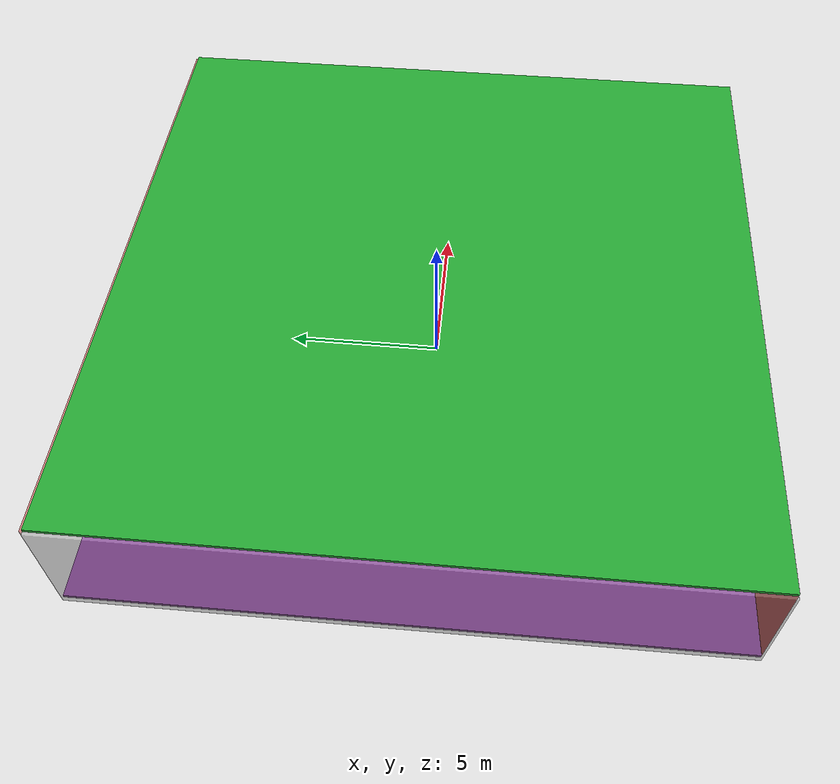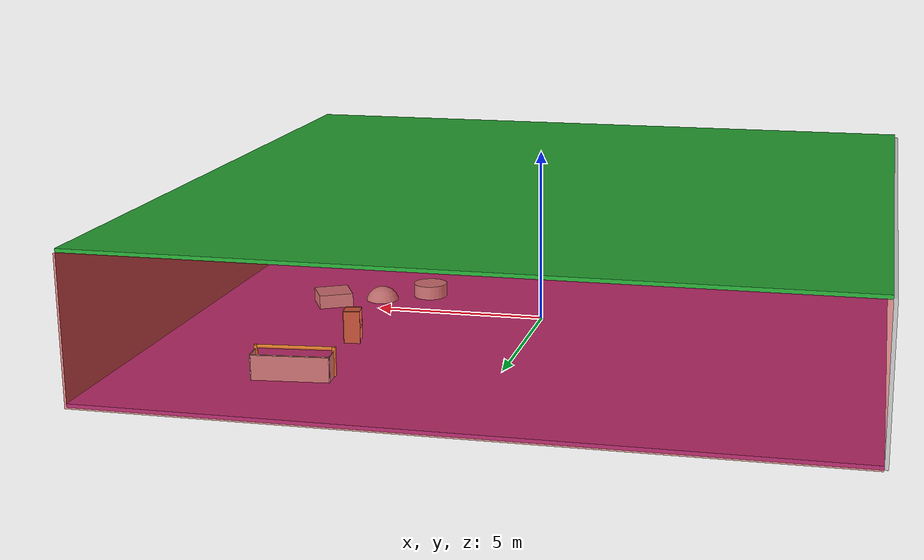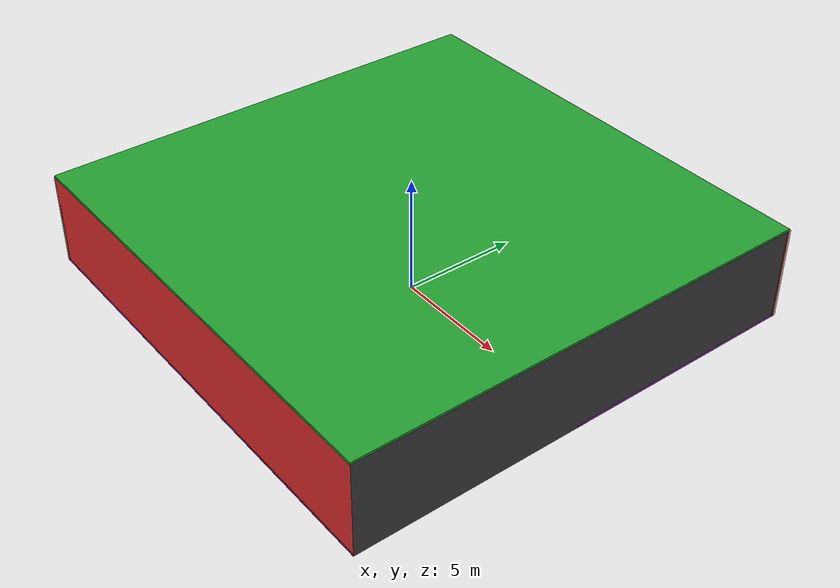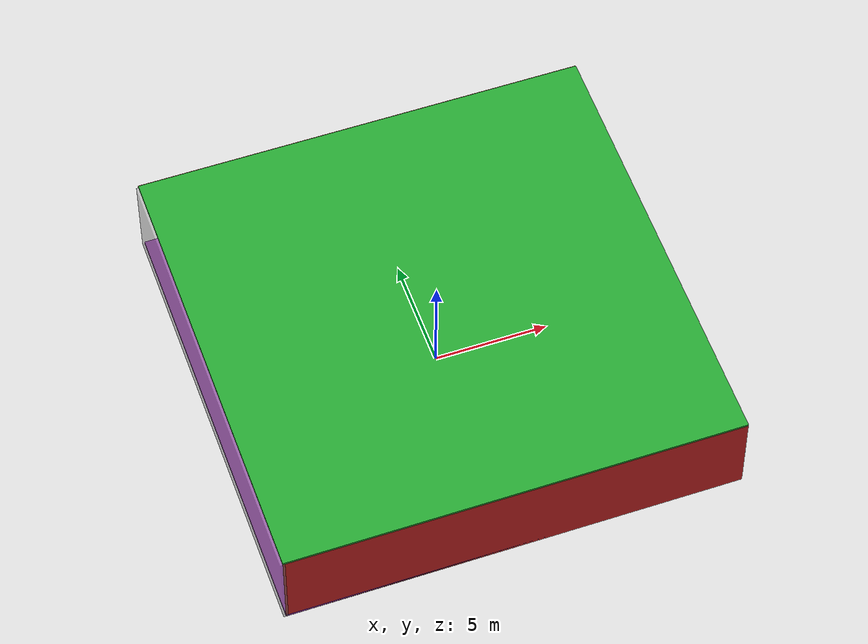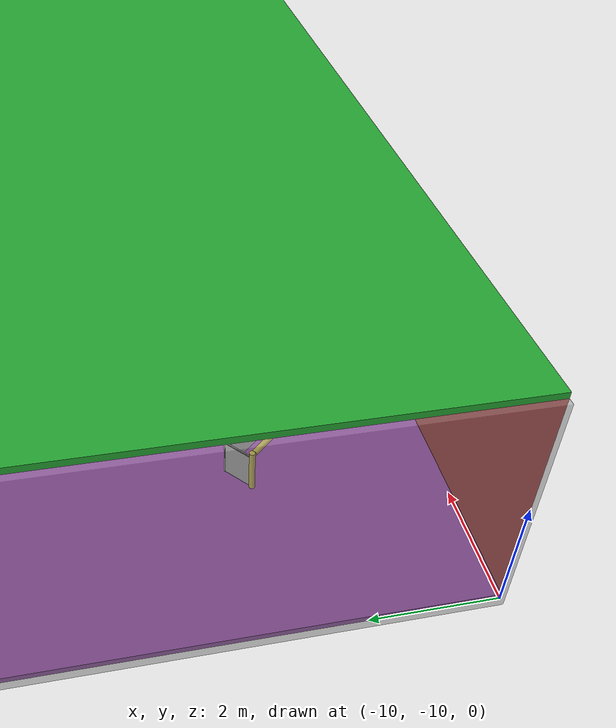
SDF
<sdf version="1.4">
 <world name="default">
  <physics type="ode">
   <max_step_size>0.001</max_step_size>
   <real_time_factor>1</real_time_factor>
   <real_time_update_rate>1000</real_time_update_rate>
   <gravity>0 0 -9.8</gravity>
  </physics>
  <scene><ambient>0.4 0.4 0.4 1</ambient><background>0.7 0.7 0.7 1</background><shadows>1</shadows></scene>
  <model name="Surrounding">
   <static>1</static>
   <link name="Ceiling">
    <collision name="Ceiling_Collision"><geometry><box><size>20 20 0.1</size></box></geometry></collision>
    <visual name="Ceiling_Visual">
     <geometry><box><size>20 20 0.1</size></box></geometry>
     <material>
      <script><uri>file://media/materials/scripts/gazebo.material</uri><name>Gazebo/Green</name></script>
     </material>
    </visual>
    <pose>0 0 4.05 0 0 0</pose>
   </link>
   <link name="Wall_South">
    <collision name="Wall_South_Collision">
     <geometry><box><size>20 0 4</size></box></geometry>
     <pose>0 0 2 0 -0 0</pose>
    </collision>
    <visual name="Wall_South_Visual">
     <pose>0 0 2 0 -0 0</pose>
     <geometry><box><size>20 0 4</size></box></geometry>
     <material>
      <script><uri>file://media/materials/scripts/gazebo.material</uri><name>Gazebo/RedGlow</name></script>
     </material>
    </visual>
    <velocity_decay><linear>0</linear><angular>0</angular></velocity_decay>
    <pose>0 -10 0 0 -0 0</pose>
   </link>
   <link name="Wall_East">
    <collision name="Wall_21_Collision">
     <geometry><box><size>20 0 4</size></box></geometry>
     <pose>0 0 2 0 -0 0</pose>
    </collision>
    <visual name="Wall_21_Visual">
     <pose>0 0 2 0 -0 0</pose>
     <geometry><box><size>20 0 4</size></box></geometry>
     <material>
      <script><uri>file://media/materials/scripts/gazebo.material</uri><name>Gazebo/Road</name></script>
     </material>
    </visual>
    <velocity_decay><linear>0</linear><angular>0</angular></velocity_decay>
    <pose>10 0 0 0 -0 1.5708</pose>
   </link>
   <link name="Wall_North">
    <collision name="Wall_22_Collision">
     <geometry><box><size>20 0.2 4</size></box></geometry>
     <pose>0 0 2 0 -0 0</pose>
    </collision>
    <visual name="Wall_22_Visual">
     <pose>0 0 2 0 -0 0</pose>
     <geometry><box><size>20 0.2 4</size></box></geometry>
     <material>
      <script><uri>file://media/materials/scripts/gazebo.material</uri><name>Gazebo/RedTransparent</name></script>
     </material>
    </visual>
    <velocity_decay><linear>0</linear><angular>0</angular></velocity_decay>
    <pose>0 10 0 0 -0 0</pose>
   </link>
   <link name="Wall_West">
    <collision name="Wall_23_Collision">
     <geometry><box><size>20 0.2 4</size></box></geometry>
     <pose>0 0 2 0 -0 0</pose>
    </collision>
    <visual name="Wall_23_Visual">
     <pose>0 0 2 0 -0 0</pose>
     <geometry><box><size>20 0.2 4</size></box></geometry>
     <material>
      <script><uri>file://media/materials/scripts/gazebo.material</uri><name>Gazebo/GreyTransparent</name></script>
     </material>
    </visual>
    <velocity_decay><linear>0</linear><angular>0</angular></velocity_decay>
    <pose>-10 0 0 0 0 -1.5708</pose>
   </link>
   <link name="Ground_link">
    <collision name="collision">
     <pose>0 0 .05 0 -0 0</pose>
     <geometry><box><size>20 20 0.1</size></box></geometry>
    </collision>
    <visual name="visual">
     <pose>0 0 .05 0 -0 0</pose>
     <geometry><box><size>20 20 0.1</size></box></geometry>
     <material>
      <script><uri>file://media/materials/scripts/gazebo.material</uri><name>Gazebo/PurpleGlow</name></script>
     </material>
    </visual>
   </link>
   <static>1</static>
  </model>
  <spherical_coordinates>
   <surface_model>EARTH_WGS84</surface_model>
   <latitude_deg>0</latitude_deg>
   <longitude_deg>0</longitude_deg>
   <elevation>0</elevation>
   <heading_deg>0</heading_deg>
  </spherical_coordinates>
  <light name="lightball_0" type="diffuse">
   <diffuse>0.8 0.8 0.8 1</diffuse>
   <specular>0.2 0.2 0.2 1</specular>
   <attenuation>
    <range>100</range>
    <constant>0.7</constant>
    <linear>0.01</linear>
    <quadratic>0.001</quadratic>
   </attenuation>
   <direction>-0.5 0.1 -0.9</direction>
   <pose>5.56241193765 -1.02241626241 3.2205268237 0 0 0</pose>
  </light>
  <light name="lightball_1" type="diffuse">
   <diffuse>0.8 0.8 0.8 1</diffuse>
   <specular>0.2 0.2 0.2 1</specular>
   <attenuation>
    <range>100</range>
    <constant>0.7</constant>
    <linear>0.01</linear>
    <quadratic>0.001</quadratic>
   </attenuation>
   <direction>-0.5 0.1 -0.9</direction>
   <pose>-1.15943029812 -5.05542367729 3.72537393105 0 0 0</pose>
  </light>
  <light name="lightball_2" type="diffuse">
   <diffuse>0.8 0.8 0.8 1</diffuse>
   <specular>0.2 0.2 0.2 1</specular>
   <attenuation>
    <range>100</range>
    <constant>0.7</constant>
    <linear>0.01</linear>
    <quadratic>0.001</quadratic>
   </attenuation>
   <direction>-0.5 0.1 -0.9</direction>
   <pose>6.20558082107 0.865387101793 1.79301569668 0 0 0</pose>
  </light>
  <light name="lightball_3" type="diffuse">
   <diffuse>0.8 0.8 0.8 1</diffuse>
   <specular>0.2 0.2 0.2 1</specular>
   <attenuation>
    <range>100</range>
    <constant>0.7</constant>
    <linear>0.01</linear>
    <quadratic>0.001</quadratic>
   </attenuation>
   <direction>-0.5 0.1 -0.9</direction>
   <pose>-6.6040838123 9.96183543593 1.83227320241 0 0 0</pose>
  </light>
  <light name="lightball_4" type="diffuse">
   <diffuse>0.8 0.8 0.8 1</diffuse>
   <specular>0.2 0.2 0.2 1</specular>
   <attenuation>
    <range>100</range>
    <constant>0.7</constant>
    <linear>0.01</linear>
    <quadratic>0.001</quadratic>
   </attenuation>
   <direction>-0.5 0.1 -0.9</direction>
   <pose>9.7525462645 -7.65783169801 1.24777683705 0 0 0</pose>
  </light>
  <light name="lightball_5" type="diffuse">
   <diffuse>0.8 0.8 0.8 1</diffuse>
   <specular>0.2 0.2 0.2 1</specular>
   <attenuation>
    <range>100</range>
    <constant>0.7</constant>
    <linear>0.01</linear>
    <quadratic>0.001</quadratic>
   </attenuation>
   <direction>-0.5 0.1 -0.9</direction>
   <pose>6.5898333337 -2.45037920768 1.35682721452 0 0 0</pose>
  </light>
  <light name="lightball_6" type="diffuse">
   <diffuse>0.8 0.8 0.8 1</diffuse>
   <specular>0.2 0.2 0.2 1</specular>
   <attenuation>
    <range>100</range>
    <constant>0.7</constant>
    <linear>0.01</linear>
    <quadratic>0.001</quadratic>
   </attenuation>
   <direction>-0.5 0.1 -0.9</direction>
   <pose>4.09246581824 -8.0633854393 1.74728227687 0 0 0</pose>
  </light>
  <light name="lightball_7" type="diffuse">
   <diffuse>0.8 0.8 0.8 1</diffuse>
   <specular>0.2 0.2 0.2 1</specular>
   <attenuation>
    <range>100</range>
    <constant>0.7</constant>
    <linear>0.01</linear>
    <quadratic>0.001</quadratic>
   </attenuation>
   <direction>-0.5 0.1 -0.9</direction>
   <pose>2.66385675087 -3.69040233811 2.44455540994 0 0 0</pose>
  </light>
  <light name="lightball_8" type="diffuse">
   <diffuse>0.8 0.8 0.8 1</diffuse>
   <specular>0.2 0.2 0.2 1</specular>
   <attenuation>
    <range>100</range>
    <constant>0.7</constant>
    <linear>0.01</linear>
    <quadratic>0.001</quadratic>
   </attenuation>
   <direction>-0.5 0.1 -0.9</direction>
   <pose>3.78364592301 0.0687579227791 0.516086027886 0 0 0</pose>
  </light>
  <light name="lightball_9" type="diffuse">
   <diffuse>0.8 0.8 0.8 1</diffuse>
   <specular>0.2 0.2 0.2 1</specular>
   <attenuation>
    <range>100</range>
    <constant>0.7</constant>
    <linear>0.01</linear>
    <quadratic>0.001</quadratic>
   </attenuation>
   <direction>-0.5 0.1 -0.9</direction>
   <pose>-8.55310194258 2.67149103484 3.65613443854 0 0 0</pose>
  </light>
  <light name="lightball_10" type="diffuse">
   <diffuse>0.8 0.8 0.8 1</diffuse>
   <specular>0.2 0.2 0.2 1</specular>
   <attenuation>
    <range>100</range>
    <constant>0.7</constant>
    <linear>0.01</linear>
    <quadratic>0.001</quadratic>
   </attenuation>
   <direction>-0.5 0.1 -0.9</direction>
   <pose>1.06850784403 -7.35841837052 3.86809060097 0 0 0</pose>
  </light>
  <light name="lightball_11" type="diffuse">
   <diffuse>0.8 0.8 0.8 1</diffuse>
   <specular>0.2 0.2 0.2 1</specular>
   <attenuation>
    <range>100</range>
    <constant>0.7</constant>
    <linear>0.01</linear>
    <quadratic>0.001</quadratic>
   </attenuation>
   <direction>-0.5 0.1 -0.9</direction>
   <pose>-5.97880894019 -9.02480782404 0.751193581413 0 0 0</pose>
  </light>
  <include>
   <uri>model://robocup_3Dsim_goal</uri>
   <pose>-6.65437913762 -7.5944140658 0 0 0 0.738844713954</pose>
  </include>
  <include>
   <uri>model://robocup_3Dsim_goal</uri>
   <pose>-3.39177455503 -6.73852124215 0 0 0 0.215582630815</pose>
  </include>
  <include>
   <uri>model://textured_shapes</uri>
   <pose>5.09353080126 -0.63991530747 0 0 0 2.06907389235</pose>
  </include>
  <include><uri>model://cabinet</uri><pose>4.63958482294 3.55650385692 0 0 0 0.182204759871</pose></include>
  <include>
   <uri>model://robocup_3Dsim_goal</uri>
   <pose>5.19273291004 6.67945574657 0 0 0 1.66207313604</pose>
  </include>
 </world>
</sdf>

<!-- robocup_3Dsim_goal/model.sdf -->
<sdf version="1.5">
  <model name="robocup_3d_goal">
    <static>true</static>
    <link name="left_post">
      <pose>0 1.05 0.45 0 0 0</pose>
      <collision name="collision">
        <geometry>
          <cylinder>
            <radius>0.05</radius>
            <length>0.9</length>
          </cylinder>
        </geometry>
      </collision>
      <visual name="visual">
        <geometry>
          <cylinder>
            <radius>0.05</radius>
            <length>0.9</length>
          </cylinder>
        </geometry>
        <material>
          <script>
            <uri>file://media/materials/scripts/gazebo.material</uri>
            <name>Gazebo/ZincYellow</name>
          </script>
        </material>
      </visual>
    </link>
    <link name="left_support_horiz_lower">
      <pose>0.30 1.05 0.01 0 0 0</pose>
      <collision name="collision">
        <geometry>
          <box>
            <size>0.50 0.02 0.02</size>
          </box>
        </geometry>
      </collision>
      <visual name="visual">
        <geometry>
          <box>
            <size>0.50 0.02 0.02</size>
          </box>
        </geometry>
        <material>
          <script>
            <uri>file://media/materials/scripts/gazebo.material</uri>
            <name>Gazebo/White</name>
          </script>
        </material>
      </visual>
    </link>
    <link name="left_support_horiz_upper">
      <pose>0.30 1.05 0.79 0 0 0</pose>
      <collision name="collision">
        <geometry>
          <box>
            <size>0.50 0.02 0.02</size>
          </box>
        </geometry>
      </collision>
      <visual name="visual">
        <geometry>
          <box>
            <size>0.50 0.02 0.02</size>
          </box>
        </geometry>
        <material>
          <script>
            <uri>file://media/materials/scripts/gazebo.material</uri>
            <name>Gazebo/White</name>
          </script>
        </material>
      </visual>
    </link>
    <link name="left_support_vertical">
      <pose>0.56 1.05 0.4 0 1.5708 0</pose>
      <collision name="collision">
        <geometry>
          <box>
            <size>0.80 0.02 0.02</size>
          </box>
        </geometry>
      </collision>
      <visual name="visual">
        <geometry>
          <box>
            <size>0.80 0.02 0.02</size>
          </box>
        </geometry>
        <material>
          <script>
            <uri>file://media/materials/scripts/gazebo.material</uri>
            <name>Gazebo/White</name>
          </script>
        </material>
      </visual>
    </link>
    <link name="right_support_horiz_lower">
      <pose>0.30 -1.05 0.01 0 0 0</pose>
      <collision name="collision">
        <geometry>
          <box>
            <size>0.50 0.02 0.02</size>
          </box>
        </geometry>
      </collision>
      <visual name="visual">
        <geometry>
          <box>
            <size>0.50 0.02 0.02</size>
          </box>
        </geometry>
        <material>
          <script>
            <uri>file://media/materials/scripts/gazebo.material</uri>
            <name>Gazebo/White</name>
          </script>
        </material>
      </visual>
    </link>
    <link name="right_support_horiz_upper">
      <pose>0.30 -1.05 0.79 0 0 0</pose>
      <collision name="collision">
        <geometry>
          <box>
            <size>0.50 0.02 0.02</size>
          </box>
        </geometry>
      </collision>
      <visual name="visual">
        <geometry>
          <box>
            <size>0.50 0.02 0.02</size>
          </box>
        </geometry>
        <material>
          <script>
            <uri>file://media/materials/scripts/gazebo.material</uri>
            <name>Gazebo/White</name>
          </script>
        </material>
      </visual>
    </link>
    <link name="right_support_vertical">
      <pose>0.56 -1.05 0.4 0 1.5708 0</pose>
      <collision name="collision">
        <geometry>
          <box>
            <size>0.80 0.02 0.02</size>
          </box>
        </geometry>
      </collision>
      <visual name="visual">
        <geometry>
          <box>
            <size>0.80 0.02 0.02</size>
          </box>
        </geometry>
        <material>
          <script>
            <uri>file://media/materials/scripts/gazebo.material</uri>
            <name>Gazebo/White</name>
          </script>
        </material>
      </visual>
    </link>
    <link name="center_support_horiz_lower">
      <pose>0.56 0 0.01 0 1.5708 0</pose>
      <collision name="collision">
        <geometry>
          <box>
            <size>0.02 2.08 0.02</size>
          </box>
        </geometry>
      </collision>
      <visual name="visual">
        <geometry>
          <box>
            <size>0.02 2.08 0.02</size>
          </box>
        </geometry>
        <material>
          <script>
            <uri>file://media/materials/scripts/gazebo.material</uri>
            <name>Gazebo/White</name>
          </script>
        </material>
      </visual>
    </link>
    <link name="center_support_horiz_upper">
      <pose>0.56 0 0.79 0 1.5708 0</pose>
      <collision name="collision">
        <geometry>
          <box>
            <size>0.02 2.08 0.02</size>
          </box>
        </geometry>
      </collision>
      <visual name="visual">
        <geometry>
          <box>
            <size>0.02 2.08 0.02</size>
          </box>
        </geometry>
        <material>
          <script>
            <uri>file://media/materials/scripts/gazebo.material</uri>
            <name>Gazebo/White</name>
          </script>
        </material>
      </visual>
    </link>
    <link name="right_post">
      <pose>0 -1.05 0.45 0 0 0</pose>
      <collision name="collision">
        <geometry>
          <cylinder>
            <radius>0.05</radius>
            <length>0.9</length>
          </cylinder>
        </geometry>
      </collision>
      <visual name="visual">
        <geometry>
          <cylinder>
            <radius>0.05</radius>
            <length>0.9</length>
          </cylinder>
        </geometry>
        <material>
          <script>
            <uri>file://media/materials/scripts/gazebo.material</uri>
            <name>Gazebo/ZincYellow</name>
          </script>
        </material>
      </visual>
    </link>
    <link name="crossbar">
      <pose>0 0 0.85 1.57 1.57 0</pose>
      <collision name="collision">
        <geometry>
          <cylinder>
            <radius>0.05</radius>
            <length>2.0</length>
          </cylinder>
        </geometry>
      </collision>
      <visual name="visual">
        <geometry>
          <cylinder>
            <radius>0.05</radius>
            <length>2.0</length>
          </cylinder>
        </geometry>
        <material>
          <script>
            <uri>file://media/materials/scripts/gazebo.material</uri>
            <name>Gazebo/ZincYellow</name>
          </script>
        </material>
      </visual>
    </link>
    <link name="center_net">
      <pose>0.56 0 0.40 0 0 0</pose>
      <collision name="collision">
        <geometry>
          <box>
            <size>0.01 2.1 0.80</size>
          </box>
        </geometry>
      </collision>
      <visual name="visual">
        <geometry>
          <box>
            <size>0.01 2.1 0.80</size>
          </box>
        </geometry>
        <material>
          <script>
            <uri>model://../model_source/models/robocup09_spl_field/materials/scripts/</uri>
            <uri>model://../model_source/models/robocup09_spl_field/materials/textures/</uri>
            <name>RoboCup/Net</name>
          </script>
        </material>
      </visual>
    </link>
    <link name="left_net">
      <pose>0.30 1.05 0.40 0 0 0</pose>
      <collision name="collision">
        <geometry>
          <box>
            <size>0.50 0.01 0.76</size>
          </box>
        </geometry>
      </collision>
      <visual name="visual">
        <geometry>
          <box>
            <size>0.50 0.01 0.76</size>
          </box>
        </geometry>
        <material>
          <script>
            <uri>model://../model_source/models/robocup09_spl_field/materials/scripts/</uri>
            <uri>model://../model_source/models/robocup09_spl_field/materials/textures/</uri>
            <name>RoboCup/Net</name>
          </script>
        </material>
      </visual>
    </link>
    <link name="right_net">
      <pose>0.30 -1.05 0.40 0 0 0</pose>
      <collision name="collision">
        <geometry>
          <box>
            <size>0.50 0.01 0.76</size>
          </box>
        </geometry>
      </collision>
      <visual name="visual">
        <geometry>
          <box>
            <size>0.50 0.01 0.76</size>
          </box>
        </geometry>
        <material>
          <script>
            <uri>model://../model_source/models/robocup09_spl_field/materials/scripts/</uri>
            <uri>model://../model_source/models/robocup09_spl_field/materials/textures/</uri>
            <name>RoboCup/Net</name>
          </script>
        </material>
      </visual>
    </link>
  </model>
</sdf>

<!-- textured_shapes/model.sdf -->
<sdf version="1.6">
  <model name="textured_shapes">
    <pose>0 0 0.5 0 0 0</pose>
    <link name="box">
      <pose>0 -1.5 0 0 0 0</pose>
      <collision name="collision">
        <geometry>
          <box>
            <size>1 1 1</size>
          </box>
        </geometry>
      </collision>
      <visual name="visual">
        <geometry>
          <box>
            <size>1 1 1</size>
          </box>
        </geometry>
        <material>
          <script>
            <uri>model://../model_source/models/textured_shapes/materials/scripts</uri>
            <uri>model://../model_source/models/textured_shapes/materials/textures</uri>
            <name>TexturedShape/Squares</name>
          </script>
        </material>
      </visual>
    </link>
    <link name="sphere">
      <collision name="collision">
        <geometry>
          <sphere>
            <radius>0.5</radius>
          </sphere>
        </geometry>
      </collision>
      <visual name="visual">
        <geometry>
          <sphere>
            <radius>0.5</radius>
          </sphere>
        </geometry>
        <material>
          <script>
            <uri>model://../model_source/models/textured_shapes/materials/scripts</uri>
            <uri>model://../model_source/models/textured_shapes/materials/textures</uri>
            <name>TexturedShape/Squares</name>
          </script>
        </material>
      </visual>
    </link>
    <link name="cylinder">
      <pose>0 1.5 0 0 0 0</pose>
      <collision name="collision">
        <geometry>
          <cylinder>
            <radius>0.5</radius>
            <length>1</length>
          </cylinder>
        </geometry>
      </collision>
      <visual name="visual">
        <geometry>
          <cylinder>
            <radius>0.5</radius>
            <length>1</length>
          </cylinder>
        </geometry>
        <material>
          <script>
            <uri>model://../model_source/models/textured_shapes/materials/scripts</uri>
            <uri>model://../model_source/models/textured_shapes/materials/textures</uri>
            <name>TexturedShape/Squares</name>
          </script>
        </material>
      </visual>
    </link>
  </model>
</sdf>

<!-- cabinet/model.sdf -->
<sdf version="1.5">
  <model name="cabinet">
    <static>true</static>
    <link name="cabinet_bottom_plate">
      <inertial>
        <pose>0 0 -1 0 0 0</pose>
        <inertia>
          <ixx>2.050000</ixx>
          <ixy>0</ixy>
          <ixz>0</ixz>
          <iyy>2.050000</iyy>
          <iyz>0</iyz>
          <izz>2.050000</izz>
        </inertia>
        <mass>25.000000</mass>
      </inertial>
      <collision name="cabinet_bottom_plate_geom">
        <pose>0 0 0.010000 0 0 0</pose>
        <geometry>
          <box>
            <size>0.450000 0.450000 0.020000</size>
          </box>
        </geometry>
      </collision>
      <visual name="cabinet_bottom_plate_geom_visual">
        <pose>0 0 0.010000 0 0 0</pose>
        <geometry>
          <box>
            <size>0.450000 0.450000 0.020000</size>
          </box>
        </geometry>
        <material>
          <script>
            <uri>model://media/materials/scripts/gazebo.material</uri>
            <name>Gazebo/Wood</name>
          </script>
        </material>
      </visual>
      <collision name="cabinet_bottom_plate_geom_cabinet_back_plate">
        <pose>0.235000 0 0.510000 0 0 0</pose>
        <geometry>
          <box>
            <size>0.020000 0.450000 1.020000</size>
          </box>
        </geometry>
      </collision>
      <visual name="cabinet_bottom_plate_geom_cabinet_back_plate_visual">
        <pose>0.235000 0 0.510000 0 0 0</pose>
        <geometry>
          <box>
            <size>0.020000 0.450000 1.020000</size>
          </box>
        </geometry>
        <material>
          <script>
            <uri>model://media/materials/scripts/gazebo.material</uri>
            <name>Gazebo/Wood</name>
          </script>
        </material>
      </visual>
      <collision name="cabinet_bottom_plate_geom_cabinet_left_plate">
        <pose>0 0.235000 0.510000 0 0 0</pose>
        <geometry>
          <box>
            <size>0.450000 0.020000 1.020000</size>
          </box>
        </geometry>
      </collision>
      <visual name="cabinet_bottom_plate_geom_cabinet_left_plate_visual">
        <pose>0 0.235000 0.510000 0 0 0</pose>
        <geometry>
          <box>
            <size>0.450000 0.020000 1.020000</size>
          </box>
        </geometry>
        <material>
          <script>
            <uri>model://media/materials/scripts/gazebo.material</uri>
            <name>Gazebo/Wood</name>
          </script>
        </material>
      </visual>
      <collision name="cabinet_bottom_plate_geom_cabinet_middle_plate">
        <pose>0 0 0.510000 0 0 0</pose>
        <geometry>
          <box>
            <size>0.450000 0.450000 0.020000</size>
          </box>
        </geometry>
      </collision>
      <visual name="cabinet_bottom_plate_geom_cabinet_middle_plate_visual">
        <pose>0 0 0.510000 0 0 0</pose>
        <geometry>
          <box>
            <size>0.450000 0.450000 0.020000</size>
          </box>
        </geometry>
        <material>
          <script>
            <uri>model://media/materials/scripts/gazebo.material</uri>
            <name>Gazebo/Wood</name>
          </script>
        </material>
      </visual>
      <collision name="cabinet_bottom_plate_geom_cabinet_right_plate">
        <pose>0 -0.235000 0.510000 0 0 0</pose>
        <geometry>
          <box>
            <size>0.450000 0.020000 1.020000</size>
          </box>
        </geometry>
      </collision>
      <visual name="cabinet_bottom_plate_geom_cabinet_right_plate_visual">
        <pose>0 -0.235000 0.510000 0 0 0</pose>
        <geometry>
          <box>
            <size>0.450000 0.020000 1.020000</size>
          </box>
        </geometry>
        <material>
          <script>
            <uri>model://media/materials/scripts/gazebo.material</uri>
            <name>Gazebo/Wood</name>
          </script>
        </material>
      </visual>
      <collision name="cabinet_bottom_plate_geom_cabinet_top_plate">
        <pose>0 0 1.010000 0 0 0</pose>
        <geometry>
          <box>
            <size>0.450000 0.450000 0.020000</size>
          </box>
        </geometry>
      </collision>
      <visual name="cabinet_bottom_plate_geom_cabinet_top_plate_visual">
        <pose>0 0 1.010000 0 0 0</pose>
        <geometry>
          <box>
            <size>0.450000 0.450000 0.020000</size>
          </box>
        </geometry>
        <material>
          <script>
            <uri>model://media/materials/scripts/gazebo.material</uri>
            <name>Gazebo/Wood</name>
          </script>
        </material>
      </visual>
    </link>
  </model>
</sdf>
